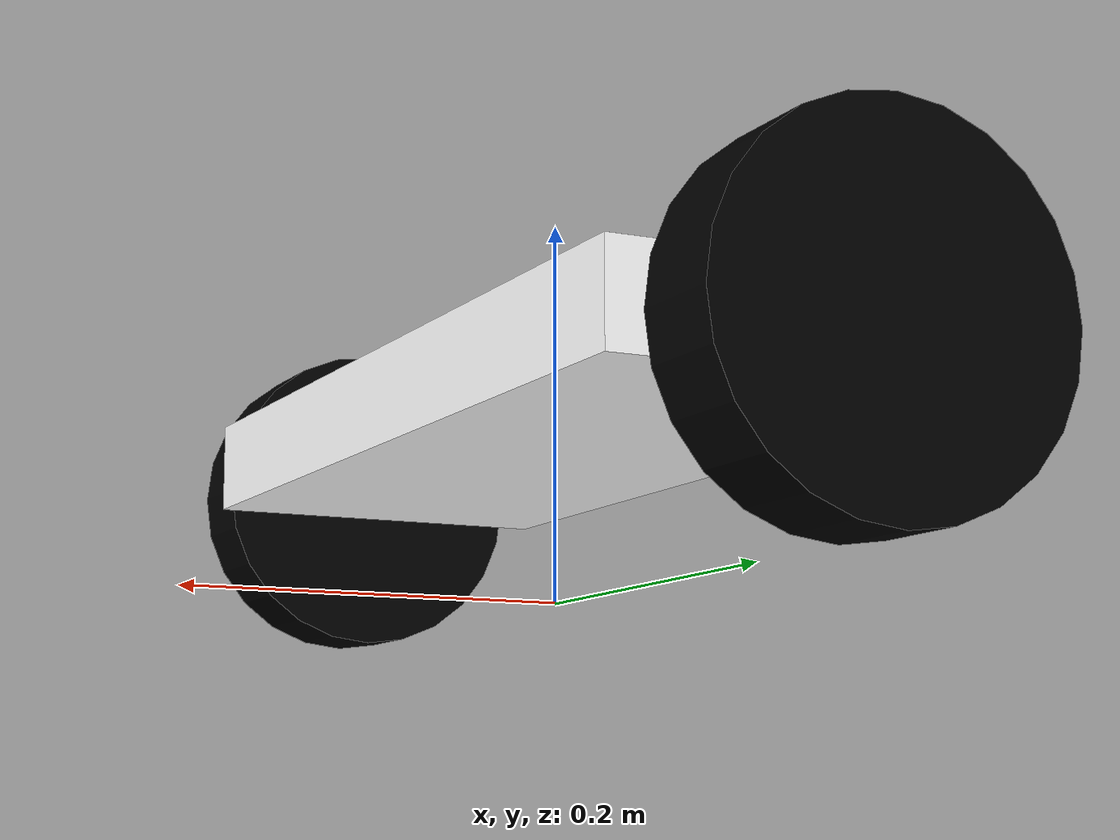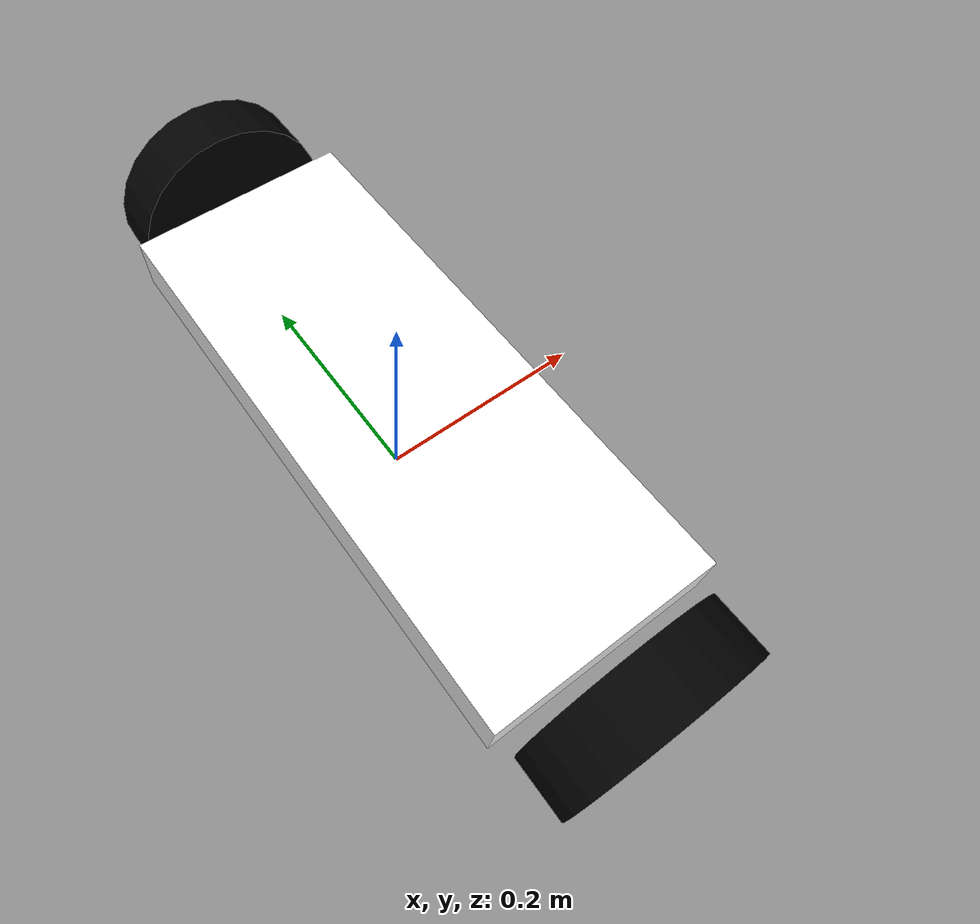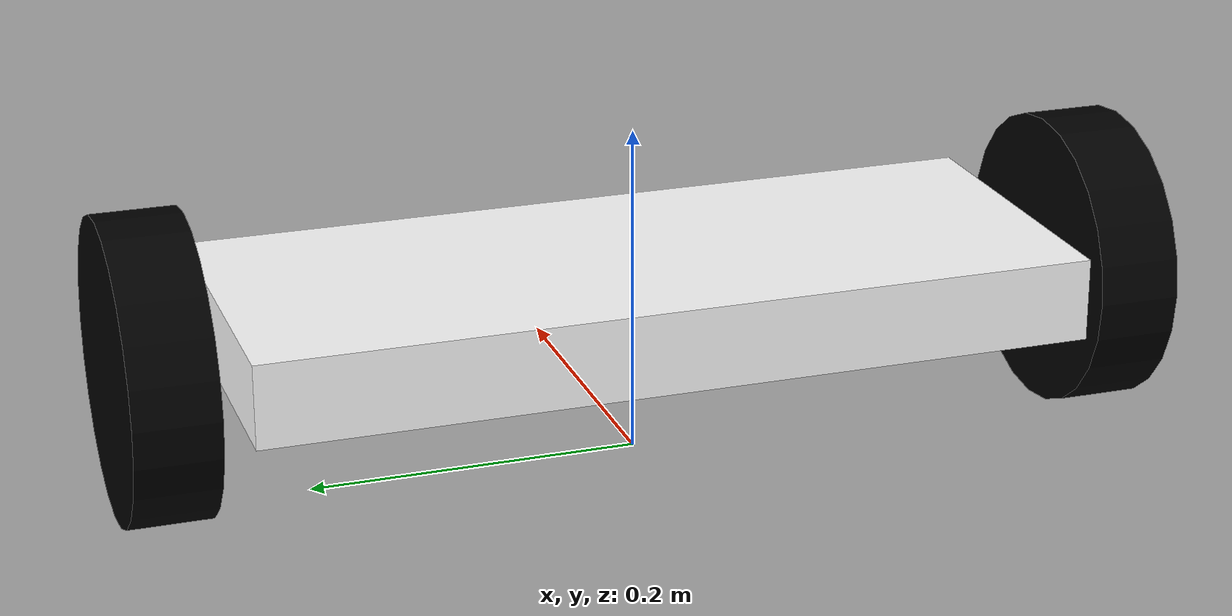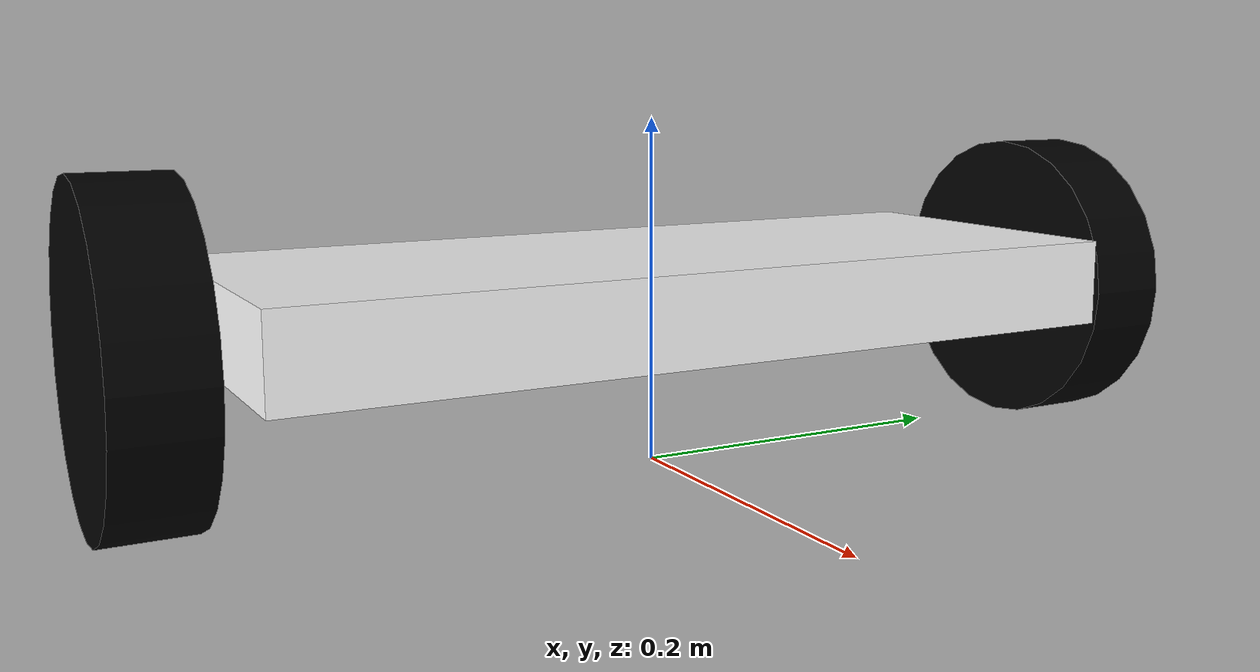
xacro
<?xml version="1.0"?>
<robot xmlns:xacro="http://www.ros.org/wiki/xacro">

    <!-- Materials -->
    <material name="white">
        <color rgba="1 1 1 1"/>
    </material>
    <material name="black">
        <color rgba="0 0 0 1"/>
    </material>
    <material name="red">
        <color rgba="1 0 0 1"/>
    </material>

    <!-- Main hoverboard deck -->
    <link name="chassis">
        <visual>
            <geometry>
                <box size=".2 .5 0.05"/>
            </geometry>
            <material name="white"/>
            <origin xyz="0 0 .1" rpy="0 0 0"/>
        </visual>
        <collision>
            <geometry>
                <box size="0.6 0.18 0.05"/>
            </geometry>
            <origin xyz="0 0 0.025" rpy="0 0 0"/>
        </collision>
        <inertial>
            <mass value="5.0"/>
            <origin xyz="0 0 0.025" rpy="0 0 0"/>
            <inertia ixx="0.1" ixy="0.0" ixz="0.0" iyy="0.1" iyz="0.0" izz="0.1"/>
        </inertial>
    </link>

    <!-- Left wheel -->
    <link name="left_wheel">
        <visual>
            <geometry>
                <cylinder length="0.05" radius="0.09"/>
            </geometry>
            <material name="black"/>
            <origin xyz="0 0.145 0.045" rpy="1.5708 0 0"/>
        </visual>
        <collision>
            <geometry>
                <cylinder length="0.05" radius="0.09"/>
            </geometry>
            <origin xyz="0 0.145 0.045" rpy="1.5708 0 0"/>
        </collision>
        <inertial>
            <mass value="0.5"/>
            <origin xyz="0 0.145 0.045" rpy="0 0 0"/>
            <inertia ixx="0.01" ixy="0.0" ixz="0.0" iyy="0.01" iyz="0.0" izz="0.01"/>
        </inertial>
    </link>

    <!-- Right wheel -->
    <link name="right_wheel">
        <visual>
            <geometry>
                <cylinder length="0.05" radius="0.09"/>
            </geometry>
            <material name="black"/>
            <origin xyz="0 -0.145 0.045" rpy="1.5708 0 0"/>
        </visual>
        <collision>
            <geometry>
                <cylinder length="0.05" radius="0.09"/>
            </geometry>
            <origin xyz="0 -0.145 0.045" rpy="1.5708 0 0"/>
        </collision>
        <inertial>
            <mass value="0.5"/>
            <origin xyz="0 -0.145 0.045" rpy="0 0 0"/>
            <inertia ixx="0.01" ixy="0.0" ixz="0.0" iyy="0.01" iyz="0.0" izz="0.01"/>
        </inertial>
    </link>

    <!-- Joints to attach wheels to chassis -->
    <joint name="left_wheel_joint" type="continuous">
        <parent link="chassis"/>
        <child link="left_wheel"/>
        <origin xyz="0 0.145 0.045" rpy="0 0 0"/>
        <axis xyz="0 1 0"/>
    </joint>
    <joint name="right_wheel_joint" type="continuous">
        <parent link="chassis"/>
        <child link="right_wheel"/>
        <origin xyz="0 -0.145 0.045" rpy="0 0 0"/>
        <axis xyz="0 1 0"/>
    </joint>

</robot>
